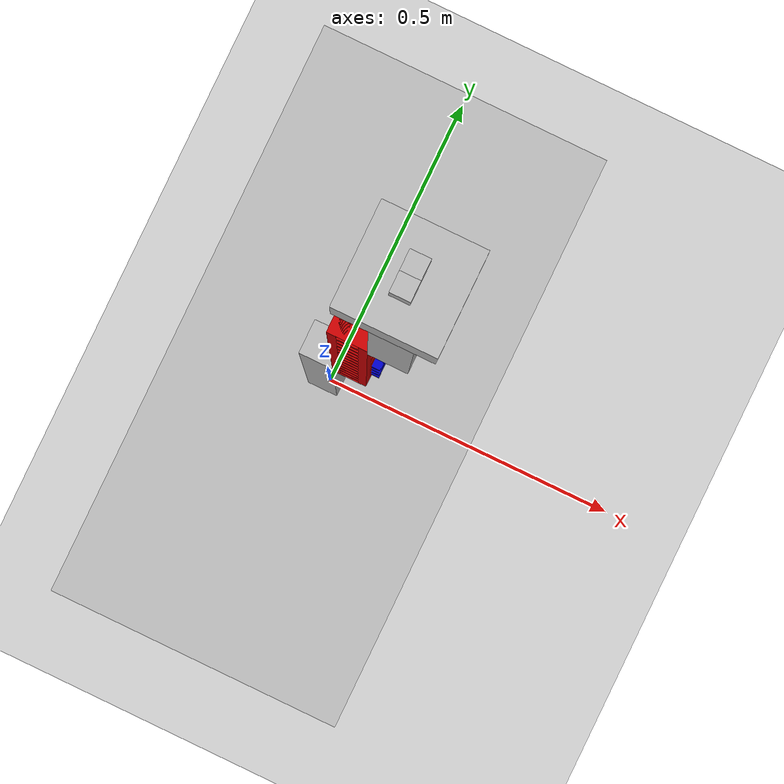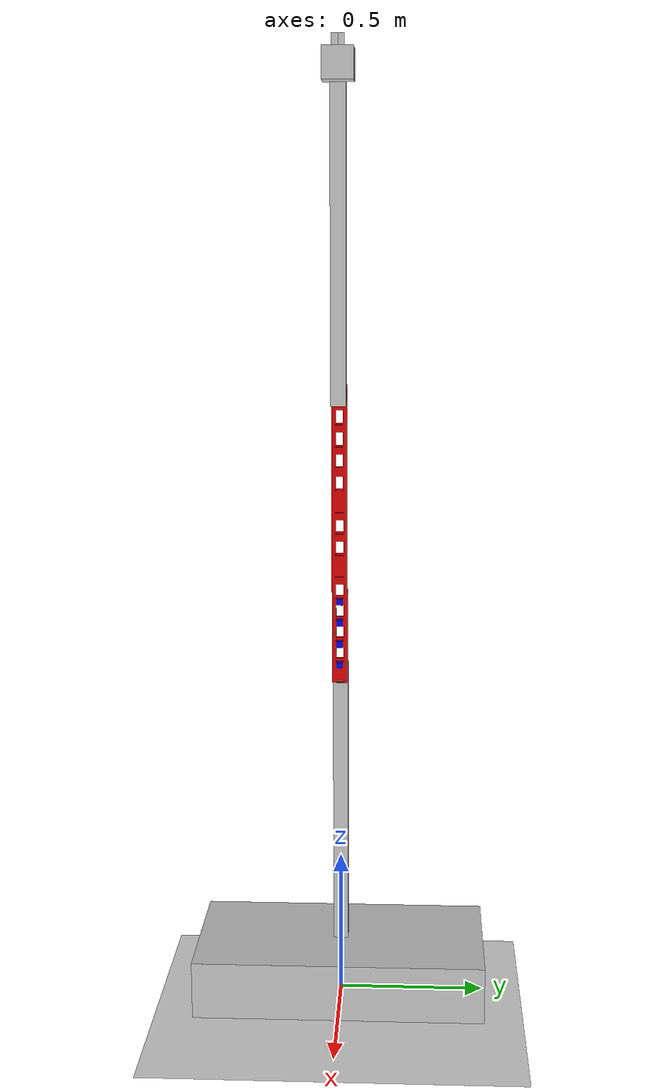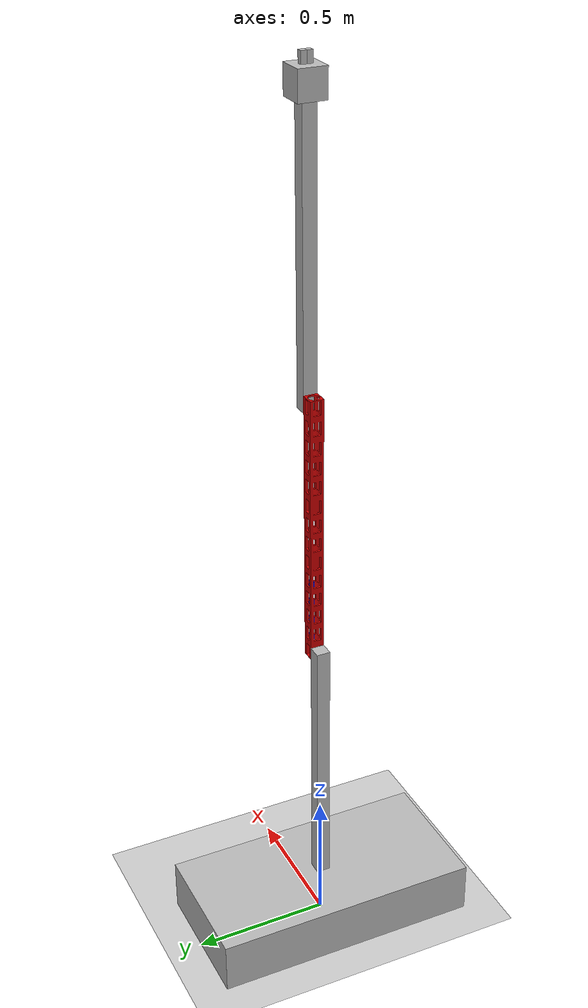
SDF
<sdf version="1.6">
 <world name="default">
  <light name="sun" type="directional">
   <pose>0 0 10 0 -0 0</pose>
   <diffuse>0.8 0.8 0.8 1</diffuse>
   <specular>0.1 0.1 0.1 1</specular>
   <attenuation>
    <range>1000</range>
    <constant>0.9</constant>
    <linear>0.01</linear>
    <quadratic>0.001</quadratic>
   </attenuation>
   <direction>-0.5 0.5 -1</direction>
  </light>
  <gravity>0 0 -9.8</gravity>
  <magnetic_field>6e-06 2.3e-05 -4.2e-05</magnetic_field>
  <atmosphere type="adiabatic"/>
  <physics name="default_physics" default="0" type="ode">
   <max_step_size>0.001</max_step_size>
   <real_time_factor>1</real_time_factor>
   <real_time_update_rate>1000</real_time_update_rate>
  </physics>
  <scene><ambient>0.4 0.4 0.4 1</ambient><background>0.7 0.7 0.7 1</background><shadows>1</shadows></scene>
  <spherical_coordinates>
   <surface_model>EARTH_WGS84</surface_model>
   <latitude_deg>0</latitude_deg>
   <longitude_deg>0</longitude_deg>
   <elevation>0</elevation>
   <heading_deg>0</heading_deg>
  </spherical_coordinates>
  <model name="ground_plane">
   <static>1</static>
   <link name="link">
    <collision name="collision">
     <geometry><plane><normal>0 0 1</normal><size>100 100</size></plane></geometry>
     <surface><friction><ode><mu>100</mu><mu2>50</mu2></ode></friction></surface>
    </collision>
    <visual name="visual">
     <cast_shadows>0</cast_shadows>
     <geometry><plane><normal>0 0 1</normal><size>100 100</size></plane></geometry>
     <material>
      <script><uri>file://media/materials/scripts/gazebo.material</uri><name>Gazebo/Grey</name></script>
     </material>
    </visual>
   </link>
  </model>
  <model name="miRobot">
   <self_collide>1</self_collide>
   <link name="base">
    <pose>0 0 0.1 0 0 0</pose>
    <inertial>
     <mass>100</mass>
     <inertia><ixx>8.7</ixx><ixy>0.0</ixy><ixz>0.0</ixz><iyy>2.417</iyy><iyz>0.0</iyz><izz>10.417</izz></inertia>
    </inertial>
    <collision name="baseC">
     <geometry><box><size>0.5  1 0.2</size></box></geometry>
     <surface>
      <contact>
       <ode>
        <soft_cfm>0</soft_cfm>
        <soft_erp>0.2</soft_erp>
        <kp>1e+13</kp>
        <kd>1e+11</kd>
        <max_vel>-1</max_vel>
        <min_depth>0</min_depth>
       </ode>
      </contact>
     </surface>
    </collision>
    <visual name="baseV"><geometry><box><size>0.5  1 0.2</size></box></geometry></visual>
   </link>
   <link name="eslabon1">
    <pose>0 0 0.7 0 0 0</pose>
    <inertial>
     <mass>0.010</mass>
     <inertia>
      <ixx>8.3542e-04</ixx>
      <ixy>0.0</ixy>
      <ixz>0.0</ixz>
      <iyy>8.3542e-04</iyy>
      <iyz>0.0</iyz>
      <izz>4.17e-06</izz>
     </inertia>
    </inertial>
    <collision name="eslabon1C">
     <geometry><box><size>0.05 0.05 1</size></box></geometry>
     <surface>
      <contact>
       <ode>
        <soft_cfm>0</soft_cfm>
        <soft_erp>0.2</soft_erp>
        <kp>1e+13</kp>
        <kd>1e+11</kd>
        <max_vel>-1</max_vel>
        <min_depth>0</min_depth>
       </ode>
      </contact>
     </surface>
    </collision>
    <visual name="eslabon1V"><geometry><box><size>0.05 0.05 1</size></box></geometry></visual>
   </link>
   <link name="eslabon2">
    <pose>0.05 0 1.652 0 0 0</pose>
    <inertial>
     <mass>0.010</mass>
     <inertia>
      <ixx>8.3542e-04</ixx>
      <ixy>0.0</ixy>
      <ixz>0.0</ixz>
      <iyy>8.3542e-04</iyy>
      <iyz>0.0</iyz>
      <izz>4.17e-06</izz>
     </inertia>
    </inertial>
    <collision name="eslabon2C">
     <geometry><mesh><uri>file://worlds/robot/brazo.stl</uri><scale>1 1 1</scale></mesh></geometry>
     <surface>
      <contact>
       <ode>
        <soft_cfm>0</soft_cfm>
        <soft_erp>0.2</soft_erp>
        <kp>1e+13</kp>
        <kd>1e+11</kd>
        <max_vel>-1</max_vel>
        <min_depth>0</min_depth>
       </ode>
      </contact>
     </surface>
    </collision>
    <visual name="eslabon2V">
     <geometry>
      <mesh><uri>file:///home/ray/robot/src/miRobot/worlds/robot/brazo.dae</uri><scale>1 1 1</scale></mesh>
     </geometry>
    </visual>
    <sensor name="velocidad2" type="imu"><update_rate>30</update_rate><always_on>1</always_on></sensor>
   </link>
   <link name="eslabon3">
    <pose>0.1 0 2.590 0 0 0</pose>
    <inertial>
     <mass>0.010</mass>
     <inertia>
      <ixx>8.3542e-04</ixx>
      <ixy>0.0</ixy>
      <ixz>0.0</ixz>
      <iyy>8.3542e-04</iyy>
      <iyz>0.0</iyz>
      <izz>4.17e-06</izz>
     </inertia>
    </inertial>
    <collision name="eslabon3C">
     <geometry><box><size>0.05 0.05 1</size></box></geometry>
     <surface>
      <contact>
       <ode>
        <soft_cfm>0</soft_cfm>
        <soft_erp>0.2</soft_erp>
        <kp>1e+13</kp>
        <kd>1e+11</kd>
        <max_vel>-1</max_vel>
        <min_depth>0</min_depth>
       </ode>
      </contact>
     </surface>
    </collision>
    <visual name="eslabon3V"><geometry><box><size>0.05 0.05 1</size></box></geometry></visual>
   </link>
   <link name="mano">
    <pose>0.1 0 3.145 0 0 0</pose>
    <inertial>
     <mass>0.0010</mass>
     <inertia>
      <ixx>1.7e-06</ixx>
      <ixy>0.0</ixy>
      <ixz>0.0</ixz>
      <iyy>1.7e-06</iyy>
      <iyz>0.0</iyz>
      <izz>1.7e-06</izz>
     </inertia>
    </inertial>
    <collision name="manoC">
     <geometry><box><size>0.1 0.1 0.1</size></box></geometry>
     <surface>
      <contact>
       <ode>
        <soft_cfm>0</soft_cfm>
        <soft_erp>0.2</soft_erp>
        <kp>1e+13</kp>
        <kd>1e+11</kd>
        <max_vel>-1</max_vel>
        <min_depth>0</min_depth>
       </ode>
      </contact>
     </surface>
    </collision>
    <visual name="manoV"><geometry><box><size>0.1 0.1 0.1</size></box></geometry></visual>
   </link>
   <link name="dedo1">
    <pose>0.1 0.01 3.210 0 0 0</pose>
    <inertial>
     <mass>0.00010</mass>
     <inertia>
      <ixx>2.417e-08</ixx>
      <ixy>0.0</ixy>
      <ixz>0.0</ixz>
      <iyy>2.417e-08</iyy>
      <iyz>0.0</iyz>
      <izz>6.7e-09</izz>
     </inertia>
    </inertial>
    <collision name="dedo1C">
     <geometry><box><size>0.02 0.02 0.05</size></box></geometry>
     <surface>
      <contact>
       <ode>
        <soft_cfm>0</soft_cfm>
        <soft_erp>0.2</soft_erp>
        <kp>1e+13</kp>
        <kd>1e+11</kd>
        <max_vel>-1</max_vel>
        <min_depth>0</min_depth>
       </ode>
      </contact>
     </surface>
    </collision>
    <visual name="dedo1V"><geometry><box><size>0.02 0.02 0.05</size></box></geometry></visual>
   </link>
   <link name="dedo2">
    <pose>0.1 -0.01 3.210 0 0 0</pose>
    <inertial>
     <mass>0.00010</mass>
     <inertia>
      <ixx>2.417e-08</ixx>
      <ixy>0.0</ixy>
      <ixz>0.0</ixz>
      <iyy>2.417e-08</iyy>
      <iyz>0.0</iyz>
      <izz>6.7e-09</izz>
     </inertia>
    </inertial>
    <collision name="dedo2C">
     <geometry><box><size>0.02 0.02 0.05</size></box></geometry>
     <surface>
      <contact>
       <ode>
        <soft_cfm>0</soft_cfm>
        <soft_erp>0.2</soft_erp>
        <kp>1e+13</kp>
        <kd>1e+11</kd>
        <max_vel>-1</max_vel>
        <min_depth>0</min_depth>
       </ode>
      </contact>
     </surface>
    </collision>
    <visual name="dedo2V"><geometry><box><size>0.02 0.02 0.05</size></box></geometry></visual>
   </link>
   <joint name="eslabon1J" type="revolute">
    <pose>0 0 -10.5 0 0 0</pose>
    <parent>base</parent>
    <child>eslabon1</child>
    <axis>
     <dynamics>
      <damping>1</damping>
      <friction>1</friction>
      <spring_reference>0</spring_reference>
      <spring_stiffness>0</spring_stiffness>
     </dynamics>
     <limit><lower>-3.14</lower><upper>3.14</upper><effort>9.5</effort><velocity>0.1</velocity></limit>
     <xyz>0 0 -1</xyz>
     <use_parent_model_frame>1</use_parent_model_frame>
    </axis>
   </joint>
   <joint name="eslabon2J" type="revolute">
    <pose>0 0 -0.475 0 0 0</pose>
    <parent>eslabon1</parent>
    <child>eslabon2</child>
    <axis>
     <dynamics>
      <damping>1</damping>
      <friction>0</friction>
      <spring_reference>0</spring_reference>
      <spring_stiffness>0</spring_stiffness>
     </dynamics>
     <limit><lower>0</lower><upper>3.14</upper><velocity>0.1</velocity></limit>
     <xyz>1 0 0</xyz>
     <use_parent_model_frame>1</use_parent_model_frame>
    </axis>
    <sensor name="fuerza2" type="force_torque"><update_rate>30</update_rate><always_on>1</always_on></sensor>
   </joint>
   <joint name="eslabon3J" type="revolute">
    <pose>0 0 -0.475 0 0 0</pose>
    <parent>eslabon2</parent>
    <child>eslabon3</child>
    <axis>
     <dynamics>
      <damping>1</damping>
      <friction>0</friction>
      <spring_reference>0</spring_reference>
      <spring_stiffness>0</spring_stiffness>
     </dynamics>
     <limit><lower>-3.14</lower><upper>3.14</upper><velocity>0.1</velocity></limit>
     <xyz>1 0 0</xyz>
     <use_parent_model_frame>1</use_parent_model_frame>
    </axis>
   </joint>
   <joint name="manoJ" type="revolute">
    <pose>0 0 -0.475 0 0 0</pose>
    <parent>eslabon3</parent>
    <child>mano</child>
    <axis>
     <dynamics>
      <damping>1</damping>
      <friction>0</friction>
      <spring_reference>0</spring_reference>
      <spring_stiffness>0</spring_stiffness>
     </dynamics>
     <limit><lower>-3.14</lower><upper>3.14</upper><velocity>0.1</velocity></limit>
     <xyz>0 0 1</xyz>
     <use_parent_model_frame>1</use_parent_model_frame>
    </axis>
   </joint>
   <joint name="dedo1J" type="prismatic">
    <pose>0 0.01 0 0 0 0</pose>
    <parent>mano</parent>
    <child>dedo1</child>
    <axis>
     <dynamics>
      <damping>1</damping>
      <friction>0</friction>
      <spring_reference>0</spring_reference>
      <spring_stiffness>0</spring_stiffness>
     </dynamics>
     <limit><lower>0</lower><upper>0.05</upper><velocity>0.1</velocity></limit>
     <xyz>0 1 0</xyz>
     <use_parent_model_frame>1</use_parent_model_frame>
    </axis>
   </joint>
   <joint name="dedo2J" type="prismatic">
    <pose>0 -0.01 0 0 0 0</pose>
    <parent>mano</parent>
    <child>dedo2</child>
    <axis>
     <dynamics>
      <damping>1</damping>
      <friction>0</friction>
      <spring_reference>0</spring_reference>
      <spring_stiffness>0</spring_stiffness>
     </dynamics>
     <limit><lower>0</lower><upper>0.05</upper><velocity>0.1</velocity></limit>
     <xyz>0 -1 0</xyz>
     <use_parent_model_frame>1</use_parent_model_frame>
    </axis>
   </joint>
   <plugin name="actuador" filename="libmi_robot.so"/>
  </model>
 </world>
</sdf>
